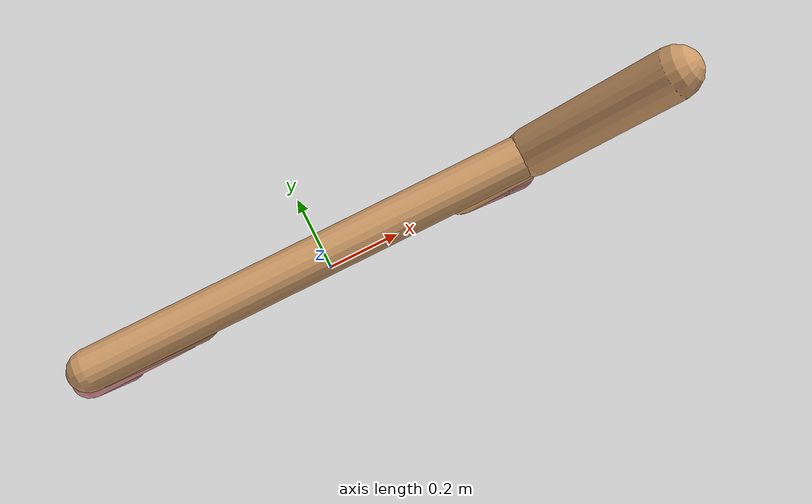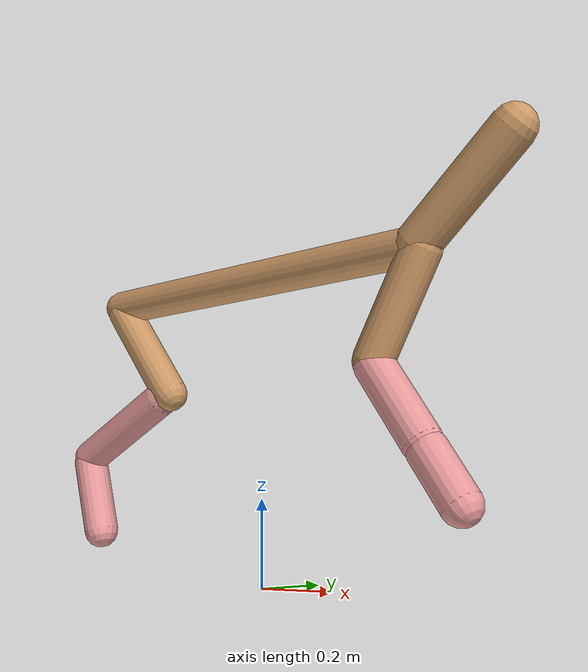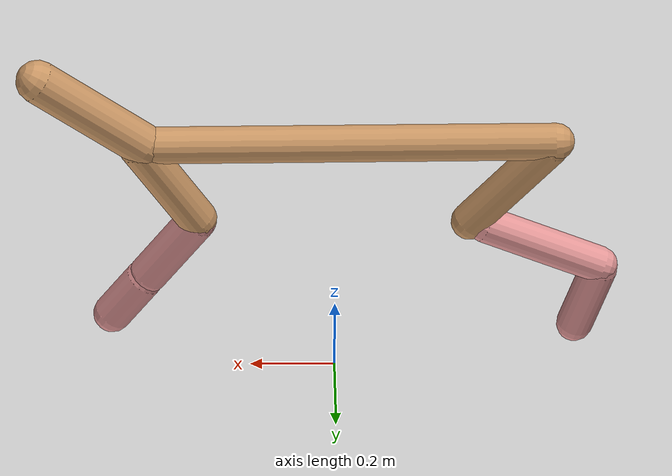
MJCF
<mujoco model="cheetah">
  <compiler angle="radian" coordinate="local" inertiafromgeom="true" settotalmass="14" />
  <default>
    <joint armature=".1" damping=".01" limited="true" solimplimit="0 .8 .03" solreflimit=".02 1" stiffness="8" />
    <geom conaffinity="0" condim="3" contype="1" friction="0.8 .1 .1" rgba="0.8 0.6 .4 1" solimp="0.0 0.8 0.01" solref="0.02 1" />
    <motor ctrllimited="true" ctrlrange="-1 1" />
  </default>
  <size nstack="300000" nuser_geom="1" />
  <option gravity="0 0 -9.81" timestep="0.01" />
  <worldbody>
    <body name="torso" pos="0.0 0.0 0.7115999215140975">
      <joint armature="0" axis="1 0 0" damping="0" limited="false" name="ignorex" pos="0 0 0" stiffness="0" type="slide" />
      <joint armature="0" axis="0 0 1" damping="0" limited="false" name="ignorez" pos="0 0 0" stiffness="0" type="slide" />
      <joint armature="0" axis="0 1 0" damping="0" limited="false" name="ignorey" pos="0 0 0" stiffness="0" type="hinge" />
      <geom fromto="-0.5 0.0 0.0 0.44871932990690605 0.0 0.0" name="torso" size="0.042463676865626375" type="capsule" />
      <geom axisangle="0 1 0 .87" name="head" pos="0.5487193299069061 0.0 0.1" size="0.04900465604089998 0.15" type="capsule" />

      <body name="bthigh" pos="-.5 0 0">
        <joint axis="0 1 0" damping="6" name="bthigh" pos="0 0 0" range="-.52 1.05" stiffness="240" type="hinge" />
        <geom axisangle="0 1 0 -3.8" name="bthigh" pos="0.10086909030590066 0.0 -0.13112981739767085" size="0.04285719866072039 0.1464254140843594" type="capsule" />
        <body name="bshin" pos="0.1617381806118013 0.0 -0.2522596347953417">
          <joint axis="0 1 0" damping="4.5" name="bshin" pos="0 0 0" range="-.785 .785" stiffness="180" type="hinge" />
          <geom axisangle="0 1 0 -2.03" name="bshin" pos="-0.1413188921884331 0.0 -0.07065944609421655" rgba="0.9 0.6 0.6 1" size="0.04285719866072039 0.15147456629416492" type="capsule" />
          <body name="bfoot" pos="-0.2826377843768662 0.0 -0.1413188921884331">
            <joint axis="0 1 0" damping="3" name="bfoot" pos="0 0 0" range="-.4 .785" stiffness="120" type="hinge" />
            <geom axisangle="0 1 0 -.27" name="bfoot" pos="0.03027303220847007 0.0 -0.0978828041407199" rgba="0.9 0.6 0.6 1" size="0.04285719866072039 0.09492406154434335" type="capsule" />
            <inertial mass="10" />
          </body>
        </body>
      </body>
      <body name="fthigh" pos="0.4487193299069061 0.0 0.0">
        <joint axis="0 1 0" damping="4.5" name="fthigh" pos="0 0 0" range="-1.5 0.8" stiffness="180" type="hinge" />
        <geom axisangle="0 1 0 .52" name="fthigh" pos="-0.06822001620890153 0.0 -0.11694859921525975" size="0.045568091664409664 0.12946738212571943" type="capsule" />
        <body name="fshin" pos="-0.13644003241780306 0.0 -0.2338971984305195">
          <joint axis="0 1 0" damping="3" name="fshin" pos="0 0 0" range="-1.2 1.1" stiffness="120" type="hinge" />
          <geom axisangle="0 1 0 -.6" name="fshin" pos="0.06335156897783684 0.0 -0.08771755704623563" rgba="0.9 0.6 0.6 1" size="0.045568091664409664 0.10318453011523501" type="capsule" />
          <body name="ffoot" pos="0.12670313795567367 0.0 -0.17543511409247126">
            <joint axis="0 1 0" damping="1.5" name="ffoot" pos="0 0 0" range="-3.1 -0.3" stiffness="60" type="hinge" />
            <geom axisangle="0 1 0 -.6" name="ffoot" pos="0.043994584245933166 0.0 -0.06843601993811826" rgba="0.9 0.6 0.6 1" size="0.045568091664409664 0.06814072743458917" type="capsule" />
            <inertial mass="10" />
          </body>
        </body>
      </body>
    </body>
  </worldbody>
  <actuator>
    <motor gear="120" joint="bthigh" name="bthigh" />
    <motor gear="90" joint="bshin" name="bshin" />
    <motor gear="60" joint="bfoot" name="bfoot" />
    <motor gear="120" joint="fthigh" name="fthigh" />
    <motor gear="60" joint="fshin" name="fshin" />
    <motor gear="30" joint="ffoot" name="ffoot" />
  </actuator>
</mujoco>
